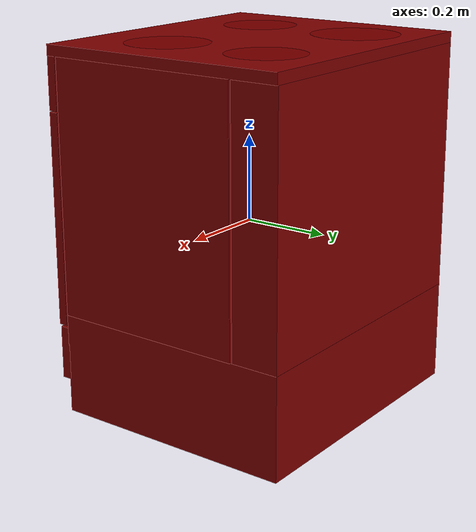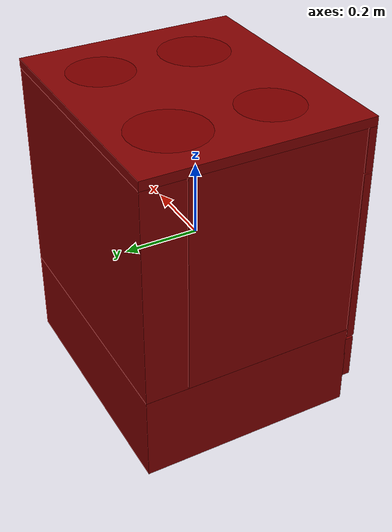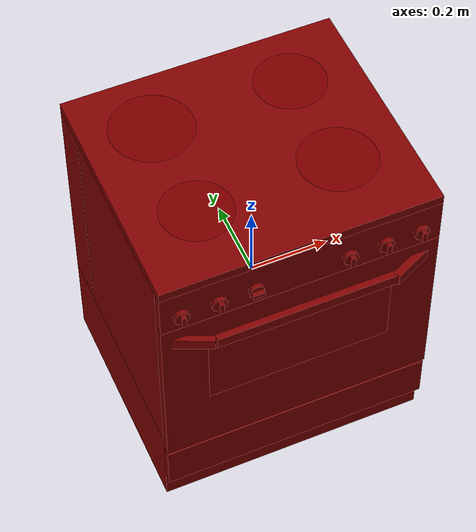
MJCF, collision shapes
<?xml version='1.0' encoding='UTF-8'?>
<mujoco model="model">
  <option timestep="0.002" gravity="0.0 0.0 -9.81"/>
  <compiler angle="radian"/>
  <asset>
    <mesh file="visuals/door.obj" name="door_vis"/>
    <mesh file="visuals/door_Clear.obj" name="door_Clear_vis"/>
    <mesh file="visuals/knob_front_left.obj" name="knob_front_left_vis"/>
    <mesh file="visuals/knob_front_right.obj" name="knob_front_right_vis"/>
    <mesh file="visuals/knob_rear_left.obj" name="knob_rear_left_vis"/>
    <mesh file="visuals/knob_rear_right.obj" name="knob_rear_right_vis"/>
    <mesh file="visuals/knob_temp.obj" name="knob_temp_vis"/>
    <mesh file="visuals/knob_time.obj" name="knob_time_vis"/>
    <mesh file="visuals/rack0.obj" name="rack0_vis"/>
    <mesh file="visuals/rack1.obj" name="rack1_vis"/>
    <mesh file="visuals/Body001.obj" name="Body001_vis"/>
    <texture file="visuals/T_BC001.png" name="Body001_material" type="2d"/>
    <material name="Body001_material" rgba="1 1 1 1.0" texture="Body001_material" shininess="0.4472135901451111" specular="2"/>
    <texture file="visuals/T_BC001.png" name="door_material" type="2d"/>
    <material name="door_material" rgba="1 1 1 1.0" texture="door_material" shininess="0.4472135901451111" specular="2"/>
    <texture file="visuals/T_BC001.png" name="door_Clear_material" type="2d"/>
    <material name="door_Clear_material" rgba="1 1 1 0.8" texture="door_Clear_material" shininess="0.4472135901451111" specular="0.3103448502657381"/>
    <texture file="visuals/T_BC001.png" name="knob_front_left_material" type="2d"/>
    <material name="knob_front_left_material" rgba="1 1 1 1.0" texture="knob_front_left_material" shininess="0.4472135901451111" specular="0.3103448502657381"/>
    <texture file="visuals/T_BC001.png" name="knob_front_right_material" type="2d"/>
    <material name="knob_front_right_material" rgba="1 1 1 1.0" texture="knob_front_right_material" shininess="0.4472135901451111" specular="0.3103448502657381"/>
    <texture file="visuals/T_BC001.png" name="knob_rear_left_material" type="2d"/>
    <material name="knob_rear_left_material" rgba="1 1 1 1.0" texture="knob_rear_left_material" shininess="0.4472135901451111" specular="0.3103448502657381"/>
    <texture file="visuals/T_BC001.png" name="knob_rear_right_material" type="2d"/>
    <material name="knob_rear_right_material" rgba="1 1 1 1.0" texture="knob_rear_right_material" shininess="0.4472135901451111" specular="0.3103448502657381"/>
    <texture file="visuals/T_BC001.png" name="knob_temp_material" type="2d"/>
    <material name="knob_temp_material" rgba="1 1 1 1.0" texture="knob_temp_material" shininess="0.4472135901451111" specular="0.3103448502657381"/>
    <texture file="visuals/T_BC001.png" name="knob_time_material" type="2d"/>
    <material name="knob_time_material" rgba="1 1 1 1.0" texture="knob_time_material" shininess="0.4472135901451111" specular="0.3103448502657381"/>
    <texture file="visuals/T_BC001.png" name="rack0_material" type="2d"/>
    <material name="rack0_material" rgba="1 1 1 1.0" texture="rack0_material" shininess="0.4472135901451111" specular="2"/>
    <texture file="visuals/T_BC001.png" name="rack1_material" type="2d"/>
    <material name="rack1_material" rgba="1 1 1 1.0" texture="rack1_material" shininess="0.4472135901451111" specular="2"/>
  </asset>
  <default>
    <default class="visual">
      <geom conaffinity="0" contype="0" group="1" type="mesh"/>
    </default>
    <default class="collision">
      <geom group="0" rgba="0.5 0 0 0.5"/>
    </default>
    <default class="spawn">
      <geom group="0" rgba="1 1 1 0.5" contype="0" conaffinity="0"/>
      <site group="0" rgba="1 1 1 0.5"/>
    </default>
    <default class="region">
      <geom group="1" conaffinity="0" contype="0" rgba="0 1 0 0"/>
    </default>
  </default>
  <worldbody>
    <body>
      <body name="object">
        <geom mesh="Body001_vis" type="mesh" solimp="0.998 0.998 0.001" solref="0.001 1" friction="0.95 0.3 0.1" class="visual" material="Body001_material"/>
        <geom class="collision" type="box" pos="-0.00134490 0.02890726 -0.30546260" size="0.34060680866241455 0.2884152829647064 0.11766926944255829" quat="1.0 0.0 0.0 0.0"/>
        <geom class="collision" type="box" pos="0.00009154 0.01781547 0.40834126" size="0.3420432209968567 0.29950711131095886 0.012456375174224377" quat="1.0 0.0 0.0 0.0"/>
        <geom class="collision" type="box" pos="-0.32693505 -0.02703258 0.10410872" size="0.015016667544841766 0.2296321988105774 0.291776180267334" quat="1.0 0.0 0.0 0.0"/>
        <geom class="collision" type="box" pos="0.32653725 -0.02703258 0.10410871" size="0.01567387580871582 0.2296321988105774 0.291776180267334" quat="1.0 0.0 0.0 0.0"/>
        <geom class="collision" type="box" pos="-0.00134490 0.26133880 0.10412833" size="0.34060680866241455 0.0559837743639946 0.2917565703392029" quat="1.0 0.0 0.0 0.0"/>
        <geom class="collision" type="box" pos="0.00009154 -0.27091837 0.33662456" size="0.3420432209968567 0.010657325387001038 0.05926032364368439" quat="1.0 0.0 0.0 0.0"/>
        <geom class="collision" type="box" pos="-0.00134490 -0.26916132 -0.28280410" size="0.34060680866241455 0.011776996776461601 0.06213369593024254" quat="1.0 0.0 0.0 0.0"/>
        <geom class="collision" type="box" pos="0.29900611 -0.01800459 0.07039776" size="0.01058216392993927 0.20792925357818604 0.006099313497543335" quat="1.0 0.0 0.0 0.0"/>
        <geom class="collision" type="box" pos="0.29900611 -0.01800459 -0.07369392" size="0.01058216392993927 0.20792925357818604 0.006099313497543335" quat="1.0 0.0 0.0 0.0"/>
        <geom class="collision" type="box" pos="-0.30001259 -0.01800459 -0.07369392" size="0.01058216392993927 0.20792925357818604 0.006099313497543335" quat="1.0 0.0 0.0 0.0"/>
        <geom class="collision" type="box" pos="-0.30001259 -0.01800459 0.07039776" size="0.01058216392993927 0.20792925357818604 0.006099313497543335" quat="1.0 0.0 0.0 0.0"/>
        <geom class="collision" type="box" pos="-0.00293726 -0.02561409 0.31466740" size="0.3087165951728821 0.22755911946296692 0.07761799544095993" quat="1.0 0.0 0.0 0.0"/>
        <body name="door">
          <joint axis="1.0 0.0 0.0" pos="-0.00165006 -0.27464897 -0.21328403" limited="true" name="door_joint" range="0.0 1.5707963267948966" type="hinge" damping="1" frictionloss="1" armature=".01" stiffness="0.05"/>
          <geom mesh="door_vis" type="mesh" solimp="0.998 0.998 0.001" solref="0.001 1" friction="0.95 0.3 0.1" class="visual" material="door_material"/>
          <geom class="collision" type="box" pos="0.00009154 -0.27091837 0.03023873" size="0.3420432209968567 0.010657325387001038 0.24407020211219788" quat="1.0 0.0 0.0 0.0" name="door_main"/>
          <geom class="collision" type="box" pos="-0.00045140 -0.27091837 0.08389247" size="0.22933340072631836 0.010657325387001038 0.11748269945383072" quat="1.0 0.0 0.0 0.0"/>
          <geom class="collision" type="box" pos="-0.00056568 -0.31325749 0.22562908" size="0.22329793870449066 0.008149610832333565 0.014712465927004814" quat="1.0 0.0 0.0 0.0" name="door_handle_main"/>
          <geom class="collision" type="box" pos="-0.27132830 -0.29471157 0.22562908" size="0.0504954494535923 0.007825186476111412 0.014712467789649963" quat="0.9773966073989868 0.0 -0.0 -0.21141402423381805"/>
          <geom class="collision" type="box" pos="0.26686505 -0.29521949 0.22562908" size="0.05358435586094856 0.009109174832701683 0.014712467789649963" quat="0.9747940301895142 0.0 0.0 0.22310669720172882"/>
          <body name="door_Clear">
            <geom mesh="door_Clear_vis" type="mesh" solimp="0.998 0.998 0.001" solref="0.001 1" friction="0.95 0.3 0.1" class="visual" material="door_Clear_material"/>
            <geom class="collision" type="box" pos="-0.00045140 -0.27091837 0.08389247" size="0.22933340072631836 0.010657325387001038 0.11748269945383072" quat="1.0 0.0 0.0 0.0"/>
          </body>
        </body>
        <body name="knob_front_left">
          <joint axis="0.0 -1.0 0.0" pos="-0.29322198 -0.29304937 0.32399350" limited="true" name="knob_front_left_joint" range="0.0 3.141592653589793" type="hinge" damping="0.05" armature="1" frictionloss="0.75"/>
          <geom mesh="knob_front_left_vis" type="mesh" solimp="0.998 0.998 0.001" solref="0.001 1" friction="0.95 0.3 0.1" class="visual" material="knob_front_left_material"/>
          <geom class="collision" type="cylinder" pos="-0.29334089 -0.28774494 0.32399350" size="0.018288765102624893 0.00562359718605876" quat="0.7071068286895752 0.7071067690849304 0.0 0.0" friction="100 0.5 0.01"/>
          <geom class="collision" type="box" pos="-0.29328021 -0.29891137 0.32399350" size="0.005763246212154627 0.005637200549244881 0.014712465927004814" quat="1.0 0.0 0.0 0.0" name="knob_front_left_main" friction="100 0.5 0.01"/>
        </body>
        <body name="knob_front_right">
          <joint axis="0.0 -1.0 0.0" pos="0.29101366 -0.29304937 0.32399350" limited="true" name="knob_front_right_joint" range="0.0 3.141592653589793" type="hinge" damping="0.05" armature="1" frictionloss="0.75"/>
          <geom mesh="knob_front_right_vis" type="mesh" solimp="0.998 0.998 0.001" solref="0.001 1" friction="0.95 0.3 0.1" class="visual" material="knob_front_right_material"/>
          <geom class="collision" type="cylinder" pos="0.29086053 -0.28774494 0.32399350" size="0.018288765102624893 0.00562359718605876" quat="0.7071068286895752 0.7071067690849304 0.0 0.0" friction="100 0.5 0.01"/>
          <geom class="collision" type="box" pos="0.29086053 -0.29891137 0.32399350" size="0.005763246212154627 0.005637200549244881 0.014712465927004814" quat="1.0 0.0 0.0 0.0" name="knob_front_right_main" friction="100 0.5 0.01"/>
        </body>
        <body name="knob_rear_left">
          <joint axis="0.0 -1.0 0.0" pos="-0.20368947 -0.29304937 0.32399350" limited="true" name="knob_rear_left_joint" range="0.0 3.141592653589793" type="hinge" damping="0.05" armature="1" frictionloss="0.75"/>
          <geom mesh="knob_rear_left_vis" type="mesh" solimp="0.998 0.998 0.001" solref="0.001 1" friction="0.95 0.3 0.1" class="visual" material="knob_rear_left_material"/>
          <geom class="collision" type="cylinder" pos="-0.20373566 -0.28774494 0.32399350" size="0.018288765102624893 0.00562359718605876" quat="0.7071068286895752 0.7071067690849304 0.0 0.0" friction="100 0.5 0.01"/>
          <geom class="collision" type="box" pos="-0.20373566 -0.29891137 0.32399350" size="0.005763246212154627 0.005637200549244881 0.014712465927004814" quat="1.0 0.0 0.0 0.0" name="knob_rear_left_main" friction="100 0.5 0.01"/>
        </body>
        <body name="knob_rear_right">
          <joint axis="0.0 -1.0 0.0" pos="0.20278205 -0.29304937 0.32399350" limited="true" name="knob_rear_right_joint" range="0.0 3.141592653589793" type="hinge" damping="0.05" armature="1" frictionloss="0.75"/>
          <geom mesh="knob_rear_right_vis" type="mesh" solimp="0.998 0.998 0.001" solref="0.001 1" friction="0.95 0.3 0.1" class="visual" material="knob_rear_right_material"/>
          <geom class="collision" type="cylinder" pos="0.20276041 -0.28774494 0.32399350" size="0.018288765102624893 0.00562359718605876" quat="0.7071068286895752 0.7071067690849304 0.0 0.0" friction="100 0.5 0.01"/>
          <geom class="collision" type="box" pos="0.20276041 -0.29891137 0.32399350" size="0.005763246212154627 0.005637200549244881 0.014712465927004814" quat="1.0 0.0 0.0 0.0" name="knob_rear_right_main" friction="100 0.5 0.01"/>
        </body>
        <body name="knob_temp">
          <joint axis="0.0 1.0 0.0" pos="0.11367870 -0.29304937 0.32399350" limited="true" name="knob_temp_joint" range="0.0 5.585053606381854" type="hinge" damping="0.05" armature="1" frictionloss="0.75"/>
          <geom mesh="knob_temp_vis" type="mesh" solimp="0.998 0.998 0.001" solref="0.001 1" friction="0.95 0.3 0.1" class="visual" material="knob_temp_material"/>
          <geom class="collision" type="cylinder" pos="0.11367871 -0.28774494 0.32399350" size="0.018288765102624893 0.00562359718605876" quat="0.7071068286895752 0.7071067690849304 0.0 0.0" friction="100 0.5 0.01"/>
          <geom class="collision" type="box" pos="0.11367871 -0.29891137 0.32399350" size="0.005763246212154627 0.005637200549244881 0.014712465927004814" quat="1.0 0.0 0.0 0.0" name="knob_temp_main" friction="100 0.5 0.01"/>
        </body>
        <body name="knob_time">
          <joint axis="0.0 1.0 0.0" pos="-0.11495603 -0.29304937 0.32399350" limited="true" name="knob_time_joint" range="0.0 5.323254218582705" type="hinge" damping="0.05" armature="1" frictionloss="0.75"/>
          <geom mesh="knob_time_vis" type="mesh" solimp="0.998 0.998 0.001" solref="0.001 1" friction="0.95 0.3 0.1" class="visual" material="knob_time_material"/>
          <geom class="collision" type="cylinder" pos="-0.11495604 -0.28774494 0.32399350" size="0.018288765102624893 0.00562359718605876" quat="0.7071068286895752 0.7071067690849304 0.0 0.0" friction="100 0.5 0.01"/>
          <geom class="collision" type="box" pos="-0.11495604 -0.29891137 0.32399350" size="0.01471246499568224 0.005637200549244881 0.0057632471434772015" quat="1.0 0.0 0.0 0.0" name="knob_time_main" friction="100 0.5 0.01"/>
        </body>
        <body name="rack0">
          <geom class="region" name="reg_rack0" type="box" pos="-0.00023146000000001665 -0.024392264999999996 0.011099044999999998" size="0.28390884 0.202395975 0.068788035"/>
          <joint axis="0.0 -1.0 0.0" pos="0.00016996 -0.02288476 -0.06232288" limited="true" name="rack0_joint" range="0.0 0.38" type="slide" damping="1" frictionloss="1" armature=".01" stiffness="0.05"/>
          <geom mesh="rack0_vis" type="mesh" solimp="0.998 0.998 0.001" solref="0.001 1" friction="0.95 0.3 0.1" class="visual" material="rack0_material"/>
          <geom class="collision" type="box" pos="0.00089698 -0.02476462 -0.06232285" size="0.3083447217941284 0.20225954055786133 0.0029128380119800568" quat="1.0 0.0 0.0 0.0"/>
        </body>
        <body name="rack1">
          <geom class="region" name="reg_rack1" type="box" pos="-0.00023146000000001665 -0.024392264999999996 0.16281721500000002" size="0.28390884 0.202395975 0.07454105500000001"/>
          <joint axis="0.0 -1.0 0.0" pos="0.00016999 -0.02288477 0.08472455" limited="true" name="rack1_joint" range="0.0 0.38" type="slide" damping="1" frictionloss="1" armature=".01" stiffness="0.05"/>
          <geom mesh="rack1_vis" type="mesh" solimp="0.998 0.998 0.001" solref="0.001 1" friction="0.95 0.3 0.1" class="visual" material="rack1_material"/>
          <geom class="collision" type="box" pos="0.00089702 -0.02476462 0.08472456" size="0.3048071265220642 0.20225954055786133 0.0029128380119800568" quat="1.0 0.0 0.0 0.0"/>
        </body>
        <geom class="region" name="reg_int" type="box" pos="-0.00023146000000001665 -0.027084445 0.024510014999999996" size="0.28390884 0.227509215 0.208157365"/>
        <site type="cylinder" rgba="0.5 0 0 0.5" size="0.08804523199796677 0.0001" pos="0.17258294 0.16963461 0.42074114" name="burner_on_rear_right"/>
        <site type="cylinder" rgba="0.5 0 0 0.5" size="0.10222183912992477 0.0001" pos="-0.17658913 0.16444848 0.42074120" name="burner_on_rear_left"/>
        <site type="cylinder" rgba="0.5 0 0 0.5" size="0.0952414721250534 0.0001" pos="0.17247537 -0.08965596 0.42074111" name="burner_on_front_right"/>
        <site type="cylinder" rgba="0.5 0 0 0.5" size="0.08696823567152023 0.0001" pos="-0.17668432 -0.09918353 0.42074111" name="burner_on_front_left"/>
        <site name="burner_rear_right_place_site" type="cylinder" rgba="0.5 0 0 0" size="0.08804523199796677 5.000664896215312e-05" pos="0.17258294 0.16963461 0.42074114"/>
        <site name="burner_rear_left_place_site" type="cylinder" rgba="0.5 0 0 0" size="0.10222183912992477 5.000771852792241e-05" pos="-0.17658913 0.16444848 0.42074120"/>
        <site name="burner_front_right_place_site" type="cylinder" rgba="0.5 0 0 0" size="0.0952414721250534 5.000718738301657e-05" pos="0.17247537 -0.08965596 0.42074111"/>
        <site name="burner_front_left_place_site" type="cylinder" rgba="0.5 0 0 0" size="0.08696823567152023 5.000657256459817e-05" pos="-0.17668432 -0.09918353 0.42074111"/>
        <geom class="region" name="reg_main" type="box" pos="2.149999999978558e-07 0.01904225000000001 0.0" size="0.345376625 0.30203639000000004 0.42413179"/>
      </body>
    </body>
  </worldbody>
  <actuator>
    <motor name="door_joint_actuator" joint="door_joint" gear="50"/>
    <motor name="knob_front_left_joint_actuator" joint="knob_front_left_joint" gear="50"/>
    <motor name="knob_front_right_joint_actuator" joint="knob_front_right_joint" gear="50"/>
    <motor name="knob_rear_left_joint_actuator" joint="knob_rear_left_joint" gear="50"/>
    <motor name="knob_rear_right_joint_actuator" joint="knob_rear_right_joint" gear="50"/>
    <motor name="knob_temp_joint_actuator" joint="knob_temp_joint" gear="50"/>
    <motor name="knob_time_joint_actuator" joint="knob_time_joint" gear="50"/>
    <motor name="rack0_joint_actuator" joint="rack0_joint" gear="50"/>
    <motor name="rack1_joint_actuator" joint="rack1_joint" gear="50"/>
  </actuator>
</mujoco>
